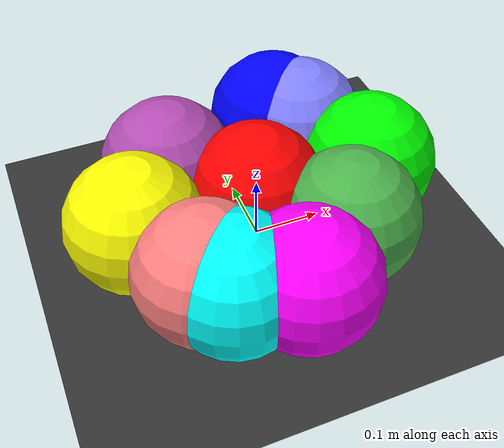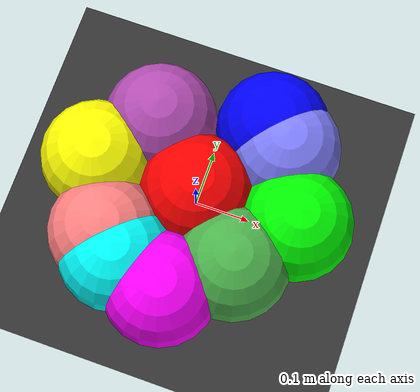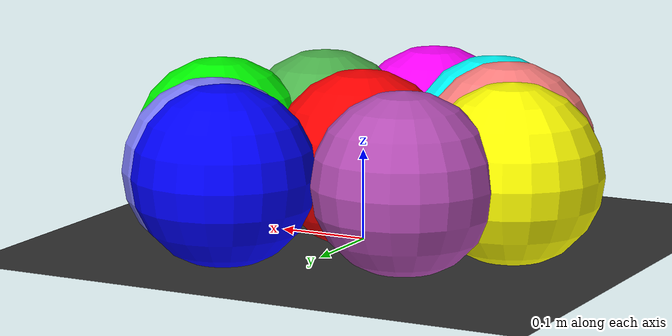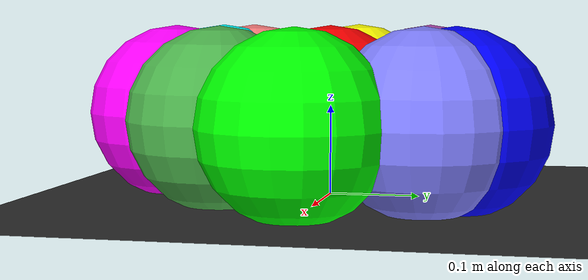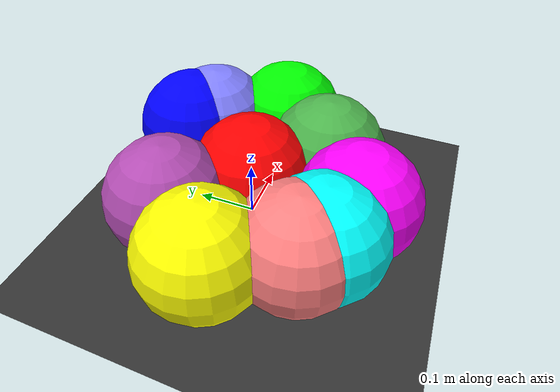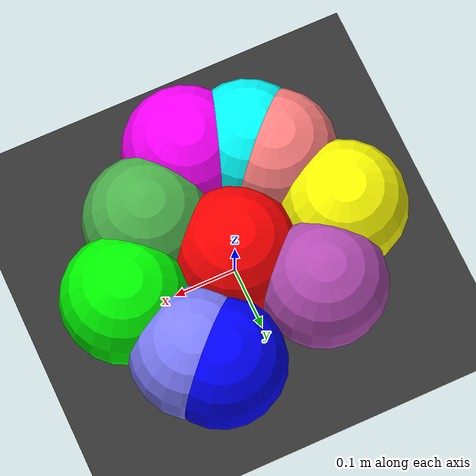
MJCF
<mujoco model="ten_contacts">
    <option gravity="0 0 -9.81" integrator="Euler" timestep="0.01"/>
    <size njmax="100" nconmax="100"/>

    <worldbody>
        <!-- Static floor -->
        <geom name="floor" type="plane" pos="0 0 0" size="50 50 0.1" rgba="0.2 0.2 0.2 1" condim="3"/>

        <!-- Cluster of 10 overlapping spheres -->
        <body name="sphere_0" pos="0 0 0.09">
            <geom type="sphere" size="0.1" rgba="1 0 0 1"/>
            <freejoint/>
        </body>

        <body name="sphere_1" pos="0.18 0 0.09">
            <geom type="sphere" size="0.1" rgba="0 1 0 1"/>
            <freejoint/>
        </body>

        <body name="sphere_2" pos="0.09 0.15 0.09">
            <geom type="sphere" size="0.1" rgba="0 0 1 1"/>
            <freejoint/>
        </body>

        <body name="sphere_3" pos="-0.18 0 0.09">
            <geom type="sphere" size="0.1" rgba="1 1 0 1"/>
            <freejoint/>
        </body>

        <body name="sphere_4" pos="0 -0.18 0.09">
            <geom type="sphere" size="0.1" rgba="1 0 1 1"/>
            <freejoint/>
        </body>

        <body name="sphere_5" pos="-0.09 -0.15 0.09">
            <geom type="sphere" size="0.1" rgba="0 1 1 1"/>
            <freejoint/>
        </body>

        <body name="sphere_6" pos="0.12 0.12 0.09">
            <geom type="sphere" size="0.1" rgba="0.5 0.5 1 1"/>
            <freejoint/>
        </body>

        <body name="sphere_7" pos="-0.12 -0.12 0.09">
            <geom type="sphere" size="0.1" rgba="1 0.5 0.5 1"/>
            <freejoint/>
        </body>

        <body name="sphere_8" pos="0.1 -0.1 0.09">
            <geom type="sphere" size="0.1" rgba="0.3 0.7 0.3 1"/>
            <freejoint/>
        </body>

        <body name="sphere_9" pos="-0.1 0.1 0.09">
            <geom type="sphere" size="0.1" rgba="0.7 0.3 0.7 1"/>
            <freejoint/>
        </body>
    </worldbody>
</mujoco>
